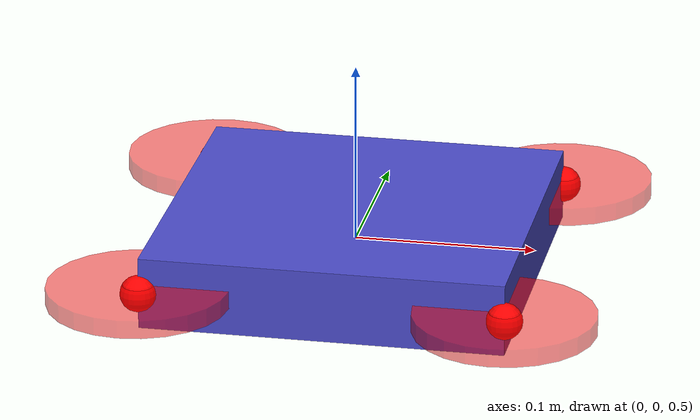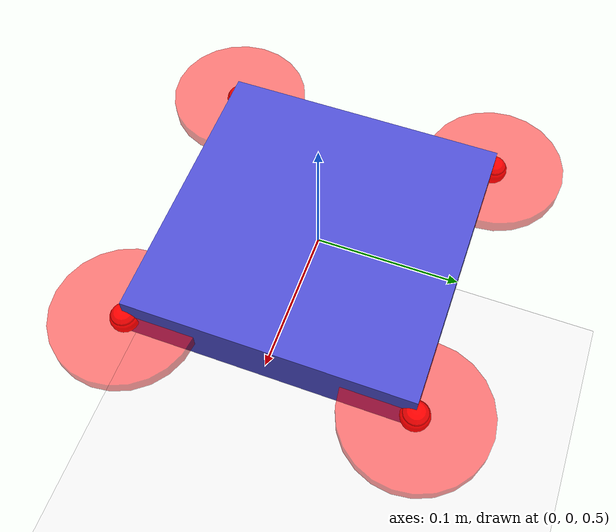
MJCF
<mujoco model="quadcopter">
  <compiler angle="radian" autolimits="true"/>

  <option timestep="0.002" integrator="implicitfast" gravity="0 0 -9.81"/>

  <default>
    <geom rgba="0.5 0.5 0.5 1"/>
    <site size="0.01" rgba="1 0 0 1"/>
  </default>

  <worldbody>
    <light pos="0 0 3" dir="0 0 -1" diffuse="0.8 0.8 0.8"/>
    <geom type="plane" size="5 5 0.1" rgba="0.9 0.9 0.9 1"/>

    <body name="base" pos="0 0 0.5">
      <freejoint name="root"/>
      <inertial pos="0 0 0" mass="1.0" diaginertia="0.01 0.01 0.02"/>

      <!-- Central body -->
      <geom type="box" size="0.1 0.1 0.02" rgba="0.3 0.3 0.8 1"/>

      <!-- Rotor sites at corners -->
      <site name="rotor_fl" pos="0.1 0.1 0"/>
      <site name="rotor_fr" pos="0.1 -0.1 0"/>
      <site name="rotor_rl" pos="-0.1 0.1 0"/>
      <site name="rotor_rr" pos="-0.1 -0.1 0"/>

      <!-- Visual rotor geoms (non-collision) -->
      <geom name="rotor_fl_vis" type="cylinder" size="0.05 0.005" pos="0.1 0.1 0" rgba="1 0 0 0.5" contype="0" conaffinity="0"/>
      <geom name="rotor_fr_vis" type="cylinder" size="0.05 0.005" pos="0.1 -0.1 0" rgba="1 0 0 0.5" contype="0" conaffinity="0"/>
      <geom name="rotor_rl_vis" type="cylinder" size="0.05 0.005" pos="-0.1 0.1 0" rgba="1 0 0 0.5" contype="0" conaffinity="0"/>
      <geom name="rotor_rr_vis" type="cylinder" size="0.05 0.005" pos="-0.1 -0.1 0" rgba="1 0 0 0.5" contype="0" conaffinity="0"/>
    </body>
  </worldbody>

  <actuator>
    <!-- Site actuators applying vertical thrust forces -->
    <motor name="thrust_fl" site="rotor_fl" gear="0 0 1 0 0 0" ctrlrange="0 20"/>
    <motor name="thrust_fr" site="rotor_fr" gear="0 0 1 0 0 0" ctrlrange="0 20"/>
    <motor name="thrust_rl" site="rotor_rl" gear="0 0 1 0 0 0" ctrlrange="0 20"/>
    <motor name="thrust_rr" site="rotor_rr" gear="0 0 1 0 0 0" ctrlrange="0 20"/>
  </actuator>
</mujoco>
